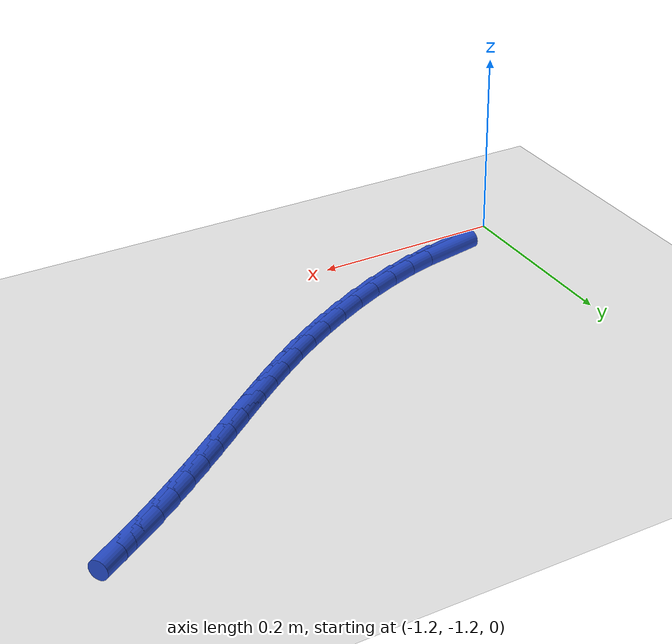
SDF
<sdf version="1.6">
 <world name="default">
  <model name="ground_plane">
   <static>1</static>
   <link name="link">
    <collision name="collision">
     <geometry><plane><normal>0 0 1</normal><size>100 100</size></plane></geometry>
     <surface><friction><ode><mu>100</mu><mu2>50</mu2></ode></friction></surface>
    </collision>
    <visual name="visual">
     <cast_shadows>0</cast_shadows>
     <geometry><plane><normal>0 0 1</normal><size>100 100</size></plane></geometry>
     <material>
      <script><uri>file://media/materials/scripts/gazebo.material</uri><name>Gazebo/WhiteGlow</name></script>
     </material>
    </visual>
   </link>
  </model>
  <model name="line">
   <link name="link_195">
    <pose>-1.1233323679636666 -1.1608609328132495 0.01 0 1.57 0.19596111850661513</pose>
    <collision name="collision">
     <geometry><cylinder><radius>0.01</radius><length>0.08</length></cylinder></geometry>
    </collision>
    <visual name="visual">
     <material>
      <script><name>Gazebo/Blue</name><uri>file://media/materials/scripts/gazebo.material</uri></script>
     </material>
     <geometry><cylinder><radius>0.01</radius><length>0.08</length></cylinder></geometry>
    </visual>
   </link>
   <link name="link_196">
    <pose>-1.095942056613148 -1.1554237202386715 0.01 0 1.57 0.27127796242235075</pose>
    <collision name="collision">
     <geometry><cylinder><radius>0.01</radius><length>0.08</length></cylinder></geometry>
    </collision>
    <visual name="visual">
     <material>
      <script><name>Gazebo/Blue</name><uri>file://media/materials/scripts/gazebo.material</uri></script>
     </material>
     <geometry><cylinder><radius>0.01</radius><length>0.08</length></cylinder></geometry>
    </visual>
   </link>
   <link name="link_197">
    <pose>-1.0680147931228012 -1.147656185568634 0.01 0 1.57 0.3341063824420136</pose>
    <collision name="collision">
     <geometry><cylinder><radius>0.01</radius><length>0.08</length></cylinder></geometry>
    </collision>
    <visual name="visual">
     <material>
      <script><name>Gazebo/Blue</name><uri>file://media/materials/scripts/gazebo.material</uri></script>
     </material>
     <geometry><cylinder><radius>0.01</radius><length>0.08</length></cylinder></geometry>
    </visual>
   </link>
   <link name="link_198">
    <pose>-1.0398691224356502 -1.1378862740774016 0.01 0 1.57 0.387437817131642</pose>
    <collision name="collision">
     <geometry><cylinder><radius>0.01</radius><length>0.08</length></cylinder></geometry>
    </collision>
    <visual name="visual">
     <material>
      <script><name>Gazebo/Blue</name><uri>file://media/materials/scripts/gazebo.material</uri></script>
     </material>
     <geometry><cylinder><radius>0.01</radius><length>0.08</length></cylinder></geometry>
    </visual>
   </link>
   <link name="link_199">
    <pose>-1.0118235894947174 -1.1264419310392373 0.01 0 1.57 0.43359999030553276</pose>
    <collision name="collision">
     <geometry><cylinder><radius>0.01</radius><length>0.08</length></cylinder></geometry>
    </collision>
    <visual name="visual">
     <material>
      <script><name>Gazebo/Blue</name><uri>file://media/materials/scripts/gazebo.material</uri></script>
     </material>
     <geometry><cylinder><radius>0.01</radius><length>0.08</length></cylinder></geometry>
    </visual>
   </link>
   <link name="link_200">
    <pose>-0.9841967392430244 -1.1136511017284056 0.01 0 1.57 0.47443477651605753</pose>
    <collision name="collision">
     <geometry><cylinder><radius>0.01</radius><length>0.08</length></cylinder></geometry>
    </collision>
    <visual name="visual">
     <material>
      <script><name>Gazebo/Blue</name><uri>file://media/materials/scripts/gazebo.material</uri></script>
     </material>
     <geometry><cylinder><radius>0.01</radius><length>0.08</length></cylinder></geometry>
    </visual>
   </link>
   <link name="link_201">
    <pose>-0.9573071166235946 -1.0998417314191695 0.01 0 1.57 0.5114605243829051</pose>
    <collision name="collision">
     <geometry><cylinder><radius>0.01</radius><length>0.08</length></cylinder></geometry>
    </collision>
    <visual name="visual">
     <material>
      <script><name>Gazebo/Blue</name><uri>file://media/materials/scripts/gazebo.material</uri></script>
     </material>
     <geometry><cylinder><radius>0.01</radius><length>0.08</length></cylinder></geometry>
    </visual>
   </link>
   <link name="link_202">
    <pose>-0.9314732665794496 -1.0853417653857933 0.01 0 1.57 0.5460050984926493</pose>
    <collision name="collision">
     <geometry><cylinder><radius>0.01</radius><length>0.08</length></cylinder></geometry>
    </collision>
    <visual name="visual">
     <material>
      <script><name>Gazebo/Blue</name><uri>file://media/materials/scripts/gazebo.material</uri></script>
     </material>
     <geometry><cylinder><radius>0.01</radius><length>0.08</length></cylinder></geometry>
    </visual>
   </link>
   <link name="link_203">
    <pose>-0.9070076675197557 -1.0704759282479712 0.01 0 1.57 0.5784363112906064</pose>
    <collision name="collision">
     <geometry><cylinder><radius>0.01</radius><length>0.08</length></cylinder></geometry>
    </collision>
    <visual name="visual">
     <material>
      <script><name>Gazebo/Blue</name><uri>file://media/materials/scripts/gazebo.material</uri></script>
     </material>
     <geometry><cylinder><radius>0.01</radius><length>0.08</length></cylinder></geometry>
    </visual>
   </link>
   <link name="link_204">
    <pose>-0.8839776004127043 -1.0554387720627314 0.01 0 1.57 0.6073408397222385</pose>
    <collision name="collision">
     <geometry><cylinder><radius>0.01</radius><length>0.08</length></cylinder></geometry>
    </collision>
    <visual name="visual">
     <material>
      <script><name>Gazebo/Blue</name><uri>file://media/materials/scripts/gazebo.material</uri></script>
     </material>
     <geometry><cylinder><radius>0.01</radius><length>0.08</length></cylinder></geometry>
    </visual>
   </link>
   <link name="link_205">
    <pose>-0.8621263022757504 -1.0402528175995152 0.01 0 1.57 0.6314933141789747</pose>
    <collision name="collision">
     <geometry><cylinder><radius>0.01</radius><length>0.08</length></cylinder></geometry>
    </collision>
    <visual name="visual">
     <material>
      <script><name>Gazebo/Blue</name><uri>file://media/materials/scripts/gazebo.material</uri></script>
     </material>
     <geometry><cylinder><radius>0.01</radius><length>0.08</length></cylinder></geometry>
    </visual>
   </link>
   <link name="link_206">
    <pose>-0.841174789006518 -1.0249287886852587 0.01 0 1.57 0.6498716352849719</pose>
    <collision name="collision">
     <geometry><cylinder><radius>0.01</radius><length>0.08</length></cylinder></geometry>
    </collision>
    <visual name="visual">
     <material>
      <script><name>Gazebo/Blue</name><uri>file://media/materials/scripts/gazebo.material</uri></script>
     </material>
     <geometry><cylinder><radius>0.01</radius><length>0.08</length></cylinder></geometry>
    </visual>
   </link>
   <link name="link_207">
    <pose>-0.8208440765026322 -1.0094774091468977 0.01 0 1.57 0.6617001498245805</pose>
    <collision name="collision">
     <geometry><cylinder><radius>0.01</radius><length>0.08</length></cylinder></geometry>
    </collision>
    <visual name="visual">
     <material>
      <script><name>Gazebo/Blue</name><uri>file://media/materials/scripts/gazebo.material</uri></script>
     </material>
     <geometry><cylinder><radius>0.01</radius><length>0.08</length></cylinder></geometry>
    </visual>
   </link>
   <link name="link_208">
    <pose>-0.8008551806617181 -0.9939094028113686 0.01 0 1.57 0.6665187418600191</pose>
    <collision name="collision">
     <geometry><cylinder><radius>0.01</radius><length>0.08</length></cylinder></geometry>
    </collision>
    <visual name="visual">
     <material>
      <script><name>Gazebo/Blue</name><uri>file://media/materials/scripts/gazebo.material</uri></script>
     </material>
     <geometry><cylinder><radius>0.01</radius><length>0.08</length></cylinder></geometry>
    </visual>
   </link>
   <link name="link_209">
    <pose>-0.7809291173814009 -0.9782354935056078 0.01 0 1.57 0.664623687188717</pose>
    <collision name="collision">
     <geometry><cylinder><radius>0.01</radius><length>0.08</length></cylinder></geometry>
    </collision>
    <visual name="visual">
     <material>
      <script><name>Gazebo/Blue</name><uri>file://media/materials/scripts/gazebo.material</uri></script>
     </material>
     <geometry><cylinder><radius>0.01</radius><length>0.08</length></cylinder></geometry>
    </visual>
   </link>
   <link name="link_210">
    <pose>-0.7608114768099994 -0.9624725101451357 0.01 0 1.57 0.6589869267049087</pose>
    <collision name="collision">
     <geometry><cylinder><radius>0.01</radius><length>0.08</length></cylinder></geometry>
    </collision>
    <visual name="visual">
     <material>
      <script><name>Gazebo/Blue</name><uri>file://media/materials/scripts/gazebo.material</uri></script>
     </material>
     <geometry><cylinder><radius>0.01</radius><length>0.08</length></cylinder></geometry>
    </visual>
   </link>
   <link name="link_211">
    <pose>-0.7404207410269646 -0.9466802339441333 0.01 0 1.57 0.6508902474605707</pose>
    <collision name="collision">
     <geometry><cylinder><radius>0.01</radius><length>0.08</length></cylinder></geometry>
    </collision>
    <visual name="visual">
     <material>
      <script><name>Gazebo/Blue</name><uri>file://media/materials/scripts/gazebo.material</uri></script>
     </material>
     <geometry><cylinder><radius>0.01</radius><length>0.08</length></cylinder></geometry>
    </visual>
   </link>
   <link name="link_212">
    <pose>-0.7197495948796089 -0.9309368806349538 0.01 0 1.57 0.6403546881182814</pose>
    <collision name="collision">
     <geometry><cylinder><radius>0.01</radius><length>0.08</length></cylinder></geometry>
    </collision>
    <visual name="visual">
     <material>
      <script><name>Gazebo/Blue</name><uri>file://media/materials/scripts/gazebo.material</uri></script>
     </material>
     <geometry><cylinder><radius>0.01</radius><length>0.08</length></cylinder></geometry>
    </visual>
   </link>
   <link name="link_213">
    <pose>-0.6987910082734241 -0.9153207367682025 0.01 0 1.57 0.6273754669341964</pose>
    <collision name="collision">
     <geometry><cylinder><radius>0.01</radius><length>0.08</length></cylinder></geometry>
    </collision>
    <visual name="visual">
     <material>
      <script><name>Gazebo/Blue</name><uri>file://media/materials/scripts/gazebo.material</uri></script>
     </material>
     <geometry><cylinder><radius>0.01</radius><length>0.08</length></cylinder></geometry>
    </visual>
   </link>
   <link name="link_214">
    <pose>-0.677537951113904 -0.8999100888944839 0.01 0 1.57 0.6119291628727194</pose>
    <collision name="collision">
     <geometry><cylinder><radius>0.01</radius><length>0.08</length></cylinder></geometry>
    </collision>
    <visual name="visual">
     <material>
      <script><name>Gazebo/Blue</name><uri>file://media/materials/scripts/gazebo.material</uri></script>
     </material>
     <geometry><cylinder><radius>0.01</radius><length>0.08</length></cylinder></geometry>
    </visual>
   </link>
   <link name="link_215">
    <pose>-0.6559833933065408 -0.8847832235644022 0.01 0 1.57 0.5939762333888692</pose>
    <collision name="collision">
     <geometry><cylinder><radius>0.01</radius><length>0.08</length></cylinder></geometry>
    </collision>
    <visual name="visual">
     <material>
      <script><name>Gazebo/Blue</name><uri>file://media/materials/scripts/gazebo.material</uri></script>
     </material>
     <geometry><cylinder><radius>0.01</radius><length>0.08</length></cylinder></geometry>
    </visual>
   </link>
   <link name="link_216">
    <pose>-0.6341203047568268 -0.8700184273285619 0.01 0 1.57 0.573463737491154</pose>
    <collision name="collision">
     <geometry><cylinder><radius>0.01</radius><length>0.08</length></cylinder></geometry>
    </collision>
    <visual name="visual">
     <material>
      <script><name>Gazebo/Blue</name><uri>file://media/materials/scripts/gazebo.material</uri></script>
     </material>
     <geometry><cylinder><radius>0.01</radius><length>0.08</length></cylinder></geometry>
    </visual>
   </link>
  </model>
 </world>
</sdf>
